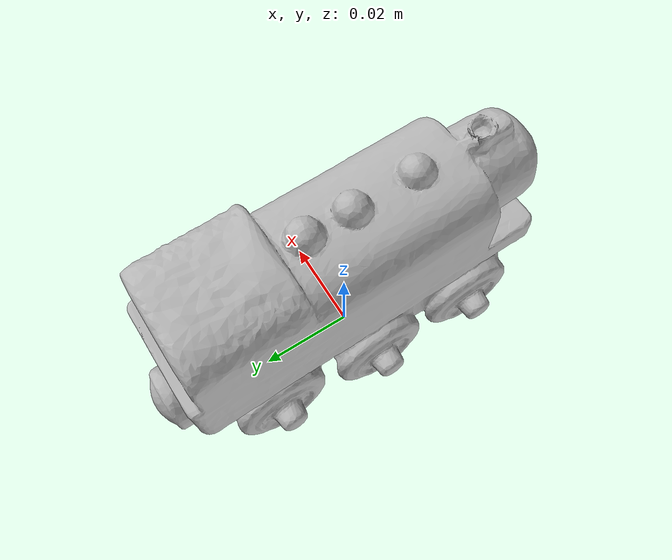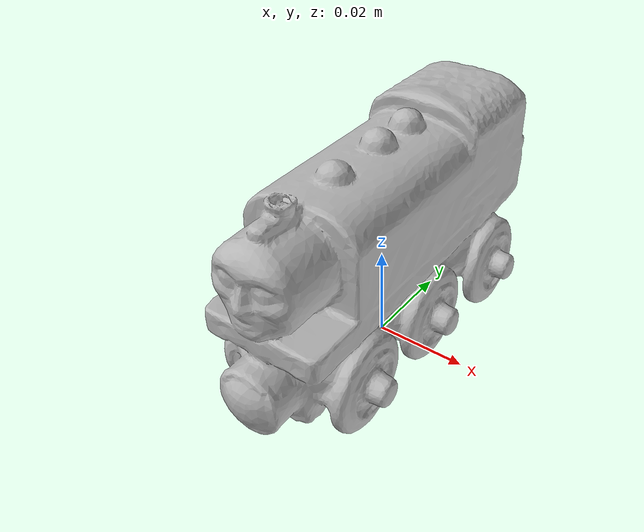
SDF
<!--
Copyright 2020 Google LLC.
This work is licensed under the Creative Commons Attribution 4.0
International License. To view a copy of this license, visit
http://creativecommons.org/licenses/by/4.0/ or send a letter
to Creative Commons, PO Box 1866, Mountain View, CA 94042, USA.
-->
<?xml version="1.0" ?>
<sdf version="1.6">
  <model name="Thomas_Friends_Wooden_Railway_Porter_5JzRhMm3a9o">
    <link name="link_0">
      <visual name="visual">
        <geometry>
          <mesh>
            <uri>meshes/model.obj</uri>
          </mesh>
        </geometry>
      </visual>
      <collision name="collision_0">
        <geometry>
          <mesh>
            <uri>meshes/model.obj</uri>
          </mesh>
        </geometry>
      </collision>
    </link>
  </model>
</sdf>
